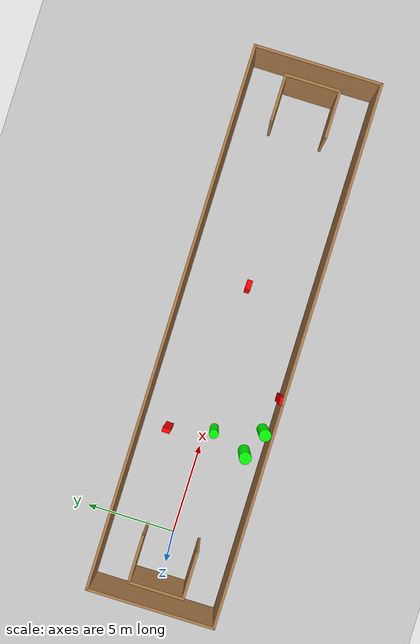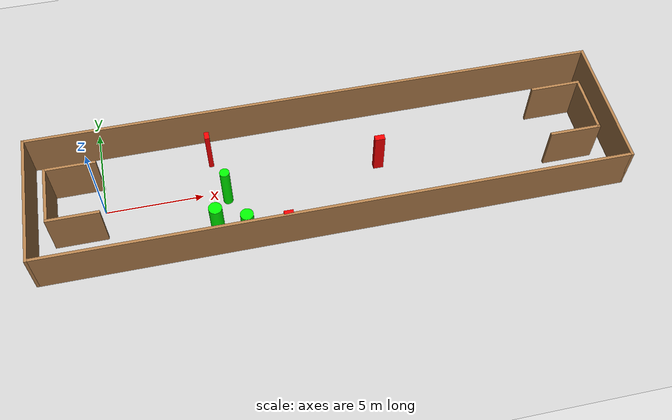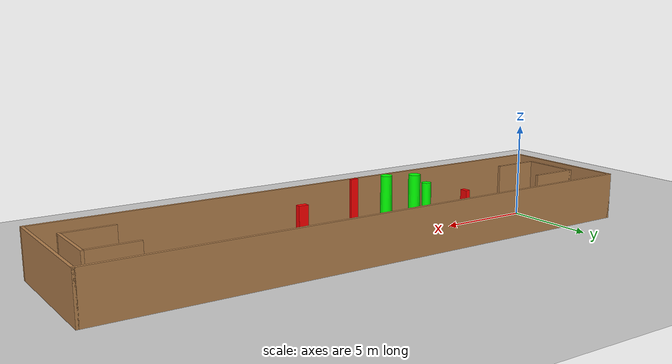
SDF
<sdf version="1.7">
 <world name="default">
  <light name="sun" type="directional">
   <pose>0 0 10 0 -0 0</pose>
   <diffuse>0.8 0.8 0.8 1</diffuse>
   <specular>0.2 0.2 0.2 1</specular>
   <attenuation>
    <range>1000</range>
    <constant>0.9</constant>
    <linear>0.01</linear>
    <quadratic>0.001</quadratic>
   </attenuation>
   <direction>-0.5 0.1 -0.9</direction>
   <spot><inner_angle>0</inner_angle><outer_angle>0</outer_angle><falloff>0</falloff></spot>
  </light>
  <model name="ground_plane">
   <static>1</static>
   <link name="link">
    <collision name="collision">
     <geometry><plane><normal>0 0 1</normal><size>100 100</size></plane></geometry>
     <surface>
      <contact><collide_bitmask>65535</collide_bitmask></contact>
      <friction><ode><mu>100</mu><mu2>50</mu2></ode></friction>
     </surface>
    </collision>
    <visual name="visual">
     <cast_shadows>0</cast_shadows>
     <geometry><plane><normal>0 0 1</normal><size>100 100</size></plane></geometry>
     <material>
      <script><uri>file://media/materials/scripts/gazebo.material</uri><name>Gazebo/Grey</name></script>
     </material>
    </visual>
   </link>
  </model>
  <gravity>0 0 -9.8</gravity>
  <magnetic_field>6e-06 2.3e-05 -4.2e-05</magnetic_field>
  <atmosphere type="adiabatic"/>
  <physics type="ode">
   <max_step_size>0.001</max_step_size>
   <real_time_factor>1</real_time_factor>
   <real_time_update_rate>1000</real_time_update_rate>
  </physics>
  <scene><ambient>0.4 0.4 0.4 1</ambient><background>0.7 0.7 0.7 1</background><shadows>1</shadows></scene>
  <spherical_coordinates>
   <surface_model>EARTH_WGS84</surface_model>
   <latitude_deg>0</latitude_deg>
   <longitude_deg>0</longitude_deg>
   <elevation>0</elevation>
   <heading_deg>0</heading_deg>
  </spherical_coordinates>
  <model name="my_base_walls">
   <link name="Wall_0">
    <collision name="Wall_0_Collision">
     <geometry><box><size>7.15 0.15 2.5</size></box></geometry>
     <pose>0 0 1.25 0 -0 0</pose>
    </collision>
    <visual name="Wall_0_Visual">
     <pose>0 0 1.25 0 -0 0</pose>
     <geometry><box><size>7.15 0.15 2.5</size></box></geometry>
     <material>
      <script><uri>file://media/materials/scripts/gazebo.material</uri><name>Gazebo/Wood</name></script>
      <ambient>1 1 1 1</ambient>
     </material>
     <meta><layer>0</layer></meta>
    </visual>
    <pose>-15 0 0 0 -0 1.5708</pose>
   </link>
   <link name="Wall_10">
    <collision name="Wall_10_Collision">
     <geometry><box><size>2.65 0.15 2.5</size></box></geometry>
     <pose>0 0 1.25 0 -0 0</pose>
    </collision>
    <visual name="Wall_10_Visual">
     <pose>0 0 1.25 0 -0 0</pose>
     <geometry><box><size>2.65 0.15 2.5</size></box></geometry>
     <material>
      <script><uri>file://media/materials/scripts/gazebo.material</uri><name>Gazebo/Wood</name></script>
      <ambient>1 1 1 1</ambient>
     </material>
     <meta><layer>0</layer></meta>
    </visual>
    <pose>-12.75 -1.5 0 0 -0 0</pose>
   </link>
   <link name="Wall_12">
    <collision name="Wall_12_Collision">
     <geometry><box><size>2.65 0.15 2.5</size></box></geometry>
     <pose>0 0 1.25 0 -0 0</pose>
    </collision>
    <visual name="Wall_12_Visual">
     <pose>0 0 1.25 0 -0 0</pose>
     <geometry><box><size>2.65 0.15 2.5</size></box></geometry>
     <material>
      <script><uri>file://media/materials/scripts/gazebo.material</uri><name>Gazebo/Wood</name></script>
      <ambient>1 1 1 1</ambient>
     </material>
     <meta><layer>0</layer></meta>
    </visual>
    <pose>-12.75 1.5 0 0 -0 0</pose>
   </link>
   <link name="Wall_14">
    <collision name="Wall_14_Collision">
     <geometry><box><size>3.15 0.15 2.5</size></box></geometry>
     <pose>0 0 1.25 0 -0 0</pose>
    </collision>
    <visual name="Wall_14_Visual">
     <pose>0 0 1.25 0 -0 0</pose>
     <geometry><box><size>3.15 0.15 2.5</size></box></geometry>
     <material>
      <script><uri>file://media/materials/scripts/gazebo.material</uri><name>Gazebo/Wood</name></script>
      <ambient>1 1 1 1</ambient>
     </material>
     <meta><layer>0</layer></meta>
    </visual>
    <pose>14 0 0 0 -0 -1.5708</pose>
   </link>
   <link name="Wall_15">
    <collision name="Wall_15_Collision">
     <geometry><box><size>2.65 0.15 2.5</size></box></geometry>
     <pose>0 0 1.25 0 -0 0</pose>
    </collision>
    <visual name="Wall_15_Visual">
     <pose>0 0 1.25 0 -0 0</pose>
     <geometry><box><size>2.65 0.15 2.5</size></box></geometry>
     <material>
      <script><uri>file://media/materials/scripts/gazebo.material</uri><name>Gazebo/Wood</name></script>
      <ambient>1 1 1 1</ambient>
     </material>
     <meta><layer>0</layer></meta>
    </visual>
    <pose>12.75 -1.5 0 0 -0 3.14159</pose>
   </link>
   <link name="Wall_17">
    <collision name="Wall_17_Collision">
     <geometry><box><size>2.65 0.15 2.5</size></box></geometry>
     <pose>0 0 1.25 0 -0 0</pose>
    </collision>
    <visual name="Wall_17_Visual">
     <pose>0 0 1.25 0 -0 0</pose>
     <geometry><box><size>2.65 0.15 2.5</size></box></geometry>
     <material>
      <script><uri>file://media/materials/scripts/gazebo.material</uri><name>Gazebo/Wood</name></script>
      <ambient>1 1 1 1</ambient>
     </material>
     <meta><layer>0</layer></meta>
    </visual>
    <pose>12.75 1.5 0 0 -0 3.14159</pose>
   </link>
   <link name="Wall_2">
    <collision name="Wall_2_Collision">
     <geometry><box><size>30.15 0.15 2.5</size></box></geometry>
     <pose>0 0 1.25 0 -0 0</pose>
    </collision>
    <visual name="Wall_2_Visual">
     <pose>0 0 1.25 0 -0 0</pose>
     <geometry><box><size>30.15 0.15 2.5</size></box></geometry>
     <material>
      <script><uri>file://media/materials/scripts/gazebo.material</uri><name>Gazebo/Wood</name></script>
      <ambient>1 1 1 1</ambient>
     </material>
     <meta><layer>0</layer></meta>
    </visual>
    <pose>-0 -3.5 0 0 -0 0</pose>
   </link>
   <link name="Wall_4">
    <collision name="Wall_4_Collision">
     <geometry><box><size>30.15 0.15 2.5</size></box></geometry>
     <pose>0 0 1.25 0 -0 0</pose>
    </collision>
    <visual name="Wall_4_Visual">
     <pose>0 0 1.25 0 -0 0</pose>
     <geometry><box><size>30.15 0.15 2.5</size></box></geometry>
     <material>
      <script><uri>file://media/materials/scripts/gazebo.material</uri><name>Gazebo/Wood</name></script>
      <ambient>1 1 1 1</ambient>
     </material>
     <meta><layer>0</layer></meta>
    </visual>
    <pose>-0 3.5 0 0 -0 0</pose>
   </link>
   <link name="Wall_6">
    <collision name="Wall_6_Collision">
     <geometry><box><size>7.15 0.15 2.5</size></box></geometry>
     <pose>0 0 1.25 0 -0 0</pose>
    </collision>
    <visual name="Wall_6_Visual">
     <pose>0 0 1.25 0 -0 0</pose>
     <geometry><box><size>7.15 0.15 2.5</size></box></geometry>
     <material>
      <script><uri>file://media/materials/scripts/gazebo.material</uri><name>Gazebo/Wood</name></script>
      <ambient>1 1 1 1</ambient>
     </material>
     <meta><layer>0</layer></meta>
    </visual>
    <pose>15 0 0 0 -0 -1.5708</pose>
   </link>
   <link name="Wall_9">
    <collision name="Wall_9_Collision">
     <geometry><box><size>3.15 0.15 2.5</size></box></geometry>
     <pose>0 0 1.25 0 -0 0</pose>
    </collision>
    <visual name="Wall_9_Visual">
     <pose>0 0 1.25 0 -0 0</pose>
     <geometry><box><size>3.15 0.15 2.5</size></box></geometry>
     <material>
      <script><uri>file://media/materials/scripts/gazebo.material</uri><name>Gazebo/Wood</name></script>
      <ambient>1 1 1 1</ambient>
     </material>
     <meta><layer>0</layer></meta>
    </visual>
    <pose>-14 0 0 0 -0 -1.5708</pose>
   </link>
   <static>1</static>
   <pose>11.5 0 0 0 -0 0</pose>
  </model>
  <model name="cylinder1">
   <static>1</static>
   <link name="link">
    <inertial>
     <mass>1</mass>
     <inertia><ixx>0.5</ixx><ixy>0</ixy><ixz>0</ixz><iyy>0.5</iyy><iyz>0</iyz><izz>1</izz></inertia>
    </inertial>
    <collision name="collision">
     <geometry><cylinder><radius>0.3360904258418544</radius><length>2.5</length></cylinder></geometry>
    </collision>
    <visual name="visual">
     <geometry><cylinder><radius>0.3360904258418544</radius><length>2.5</length></cylinder></geometry>
     <material>
      <ambient>0 1 0 1</ambient>
      <diffuse>0 1 0 1</diffuse>
      <specular>0.1 0.1 0.1 1</specular>
      <emissive>0 0 0 0</emissive>
     </material>
    </visual>
   </link>
   <pose>5.530495866359535 -2.441528559529849 1.25 0 0 0</pose>
  </model>
  <model name="cylinder2">
   <static>1</static>
   <link name="link">
    <inertial>
     <mass>1</mass>
     <inertia><ixx>0.5</ixx><ixy>0</ixy><ixz>0</ixz><iyy>0.5</iyy><iyz>0</iyz><izz>1</izz></inertia>
    </inertial>
    <collision name="collision">
     <geometry><cylinder><radius>0.24953504709627966</radius><length>2.5</length></cylinder></geometry>
    </collision>
    <visual name="visual">
     <geometry><cylinder><radius>0.24953504709627966</radius><length>2.5</length></cylinder></geometry>
     <material>
      <ambient>0 1 0 1</ambient>
      <diffuse>0 1 0 1</diffuse>
      <specular>0.1 0.1 0.1 1</specular>
      <emissive>0 0 0 0</emissive>
     </material>
    </visual>
   </link>
   <pose>6.2573788081044786 -0.47784388500835284 1.25 0 0 0</pose>
  </model>
  <model name="cylinder3">
   <static>1</static>
   <link name="link">
    <inertial>
     <mass>1</mass>
     <inertia><ixx>0.5</ixx><ixy>0</ixy><ixz>0</ixz><iyy>0.5</iyy><iyz>0</iyz><izz>1</izz></inertia>
    </inertial>
    <collision name="collision">
     <geometry><cylinder><radius>0.32699213971203417</radius><length>2.5</length></cylinder></geometry>
    </collision>
    <visual name="visual">
     <geometry><cylinder><radius>0.32699213971203417</radius><length>2.5</length></cylinder></geometry>
     <material>
      <ambient>0 1 0 1</ambient>
      <diffuse>0 1 0 1</diffuse>
      <specular>0.1 0.1 0.1 1</specular>
      <emissive>0 0 0 0</emissive>
     </material>
    </visual>
   </link>
   <pose>6.977885640747116 -3.094536340495275 1.25 0 0 0</pose>
  </model>
  <model name="box1">
   <static>1</static>
   <link name="link">
    <inertial>
     <mass>1</mass>
     <inertia><ixx>0.083</ixx><ixy>0</ixy><ixz>0</ixz><iyy>0.083</iyy><iyz>0</iyz><izz>0.083</izz></inertia>
    </inertial>
    <collision name="collision">
     <geometry><box><size>0.47082638720711845 0.24371529287832464 2.5</size></box></geometry>
    </collision>
    <visual name="visual">
     <geometry><box><size>0.47082638720711845 0.24371529287832464 2.5</size></box></geometry>
     <material>
      <ambient>1 0 0 1</ambient>
      <diffuse>1 0 0 1</diffuse>
      <specular>0.1 0.1 0.1 1</specular>
      <emissive>0 0 0 0</emissive>
     </material>
    </visual>
    <sensor name="my_contact" type="contact">
     <contact><collision>box_collision</collision><topic>__default_topic__</topic></contact>
    </sensor>
   </link>
   <pose>8.972720021871387 -3.400675711044147 1.25 0 0 0</pose>
  </model>
  <model name="box2">
   <static>1</static>
   <link name="link">
    <inertial>
     <mass>1</mass>
     <inertia><ixx>0.083</ixx><ixy>0</ixy><ixz>0</ixz><iyy>0.083</iyy><iyz>0</iyz><izz>0.083</izz></inertia>
    </inertial>
    <collision name="collision">
     <geometry><box><size>0.25095946476507 0.43119993584549804 2.5</size></box></geometry>
    </collision>
    <visual name="visual">
     <geometry><box><size>0.25095946476507 0.43119993584549804 2.5</size></box></geometry>
     <material>
      <ambient>1 0 0 1</ambient>
      <diffuse>1 0 0 1</diffuse>
      <specular>0.1 0.1 0.1 1</specular>
      <emissive>0 0 0 0</emissive>
     </material>
    </visual>
    <sensor name="my_contact" type="contact">
     <contact><collision>box_collision</collision><topic>__default_topic__</topic></contact>
    </sensor>
   </link>
   <pose>5.6936703338643735 1.982077133165971 1.25 0 0 0</pose>
  </model>
  <model name="box3">
   <static>1</static>
   <link name="link">
    <inertial>
     <mass>1</mass>
     <inertia><ixx>0.083</ixx><ixy>0</ixy><ixz>0</ixz><iyy>0.083</iyy><iyz>0</iyz><izz>0.083</izz></inertia>
    </inertial>
    <collision name="collision">
     <geometry><box><size>0.5185121272342289 0.2945688586051173 2.5</size></box></geometry>
    </collision>
    <visual name="visual">
     <geometry><box><size>0.5185121272342289 0.2945688586051173 2.5</size></box></geometry>
     <material>
      <ambient>1 0 0 1</ambient>
      <diffuse>1 0 0 1</diffuse>
      <specular>0.1 0.1 0.1 1</specular>
      <emissive>0 0 0 0</emissive>
     </material>
    </visual>
    <sensor name="my_contact" type="contact">
     <contact><collision>box_collision</collision><topic>__default_topic__</topic></contact>
    </sensor>
   </link>
   <pose>14.31270829957668 0.06723171821310592 1.25 0 0 0</pose>
  </model>
 </world>
</sdf>
